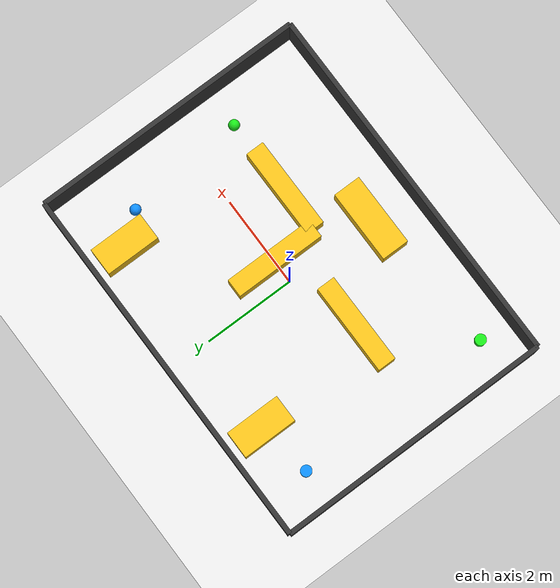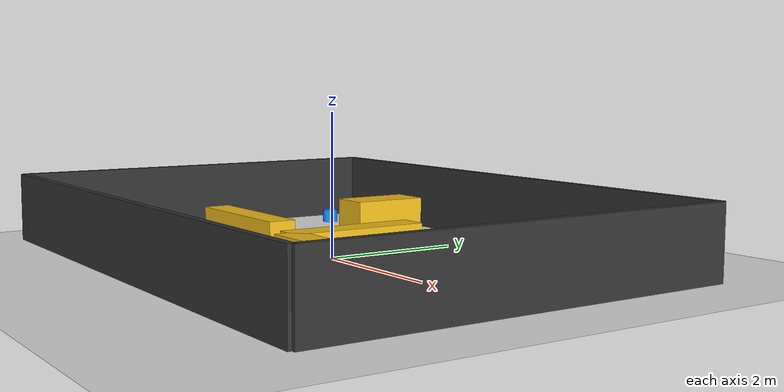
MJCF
<mujoco model="nav_room_v4">
  <option timestep="0.01" gravity="0 0 -9.81"/>
  <visual>
    <map znear="0.01" zfar="50"/>
  </visual>

  <worldbody>
    <!-- 地板 -->
    <geom name="floor" type="plane" size="5 5 0.1" rgba="0.9 0.9 0.9 1"/>

    <!-- 内墙：8m x 6m -->
    <geom name="wall_n" type="box" pos="0 3 0.5"  size="4 0.05 0.5" rgba="0.2 0.2 0.2 1" contype="1" conaffinity="1"/>
    <geom name="wall_s" type="box" pos="0 -3 0.5" size="4 0.05 0.5" rgba="0.2 0.2 0.2 1" contype="1" conaffinity="1"/>
    <geom name="wall_e" type="box" pos="4 0 0.5"  size="0.05 3 0.5" rgba="0.2 0.2 0.2 1" contype="1" conaffinity="1"/>
    <geom name="wall_w" type="box" pos="-4 0 0.5" size="0.05 3 0.5" rgba="0.2 0.2 0.2 1" contype="1" conaffinity="1"/>

    <!-- 障碍物 - 调整后确保有可行路径 -->
    <!-- 左上角障碍物 -->
    <geom name="obst_top_left" type="box" pos="-2.0 2.2 0.25" size="0.3 0.6 0.25" rgba="0.95 0.75 0.1 1" contype="1" conaffinity="1"/>

    <!-- 右上角障碍物 -->
    <geom name="obst_top_right" type="box" pos="2.5 2.2 0.25" size="0.3 0.6 0.25" rgba="0.95 0.75 0.1 1" contype="1" conaffinity="1"/>

    <!-- 中央垂直障碍物 -->
    <geom name="obst_midcol" type="box" pos="0.5 0.0 0.25" size="0.2 1.0 0.25" rgba="0.95 0.75 0.1 1" contype="1" conaffinity="1"/>

    <!-- 左侧水平障碍物 -->
    <geom name="obst_left_bar" type="box" pos="-1.5 -0.5 0.25" size="1.0 0.2 0.25" rgba="0.95 0.75 0.1 1" contype="1" conaffinity="1"/>

    <!-- 右侧水平障碍物 -->
    <geom name="obst_right_bar" type="box" pos="1.5 -1.0 0.25" size="1.0 0.2 0.25" rgba="0.95 0.75 0.1 1" contype="1" conaffinity="1"/>

    <!-- 底部障碍物 -->
    <geom name="obst_bottom" type="box" pos="0.0 -2.0 0.25" size="0.8 0.3 0.25" rgba="0.95 0.75 0.1 1" contype="1" conaffinity="1"/>

    <!-- 机器人 -->
    <body name="alice" pos="-3.2 2.0 0.1">
      <freejoint/>
      <geom type="cylinder" size="0.12 0.1" rgba="0.05 0.55 1.0 1" contype="1" conaffinity="1"/>
    </body>

    <body name="bob" pos="-3.2 -2.3 0.1">
      <freejoint/>
      <geom type="cylinder" size="0.12 0.1" rgba="0.1 0.9 0.1 1" contype="1" conaffinity="1"/>
    </body>

    <!-- 目标点 -->
    <site name="goal_a" pos="3.0 1.6 0.05" size="0.12" rgba="0.05 0.55 1.0 1"/>
    <site name="goal_b" pos="3.2 -1.0 0.05" size="0.12" rgba="0.1 0.9 0.1 1"/>
  </worldbody>
</mujoco>
